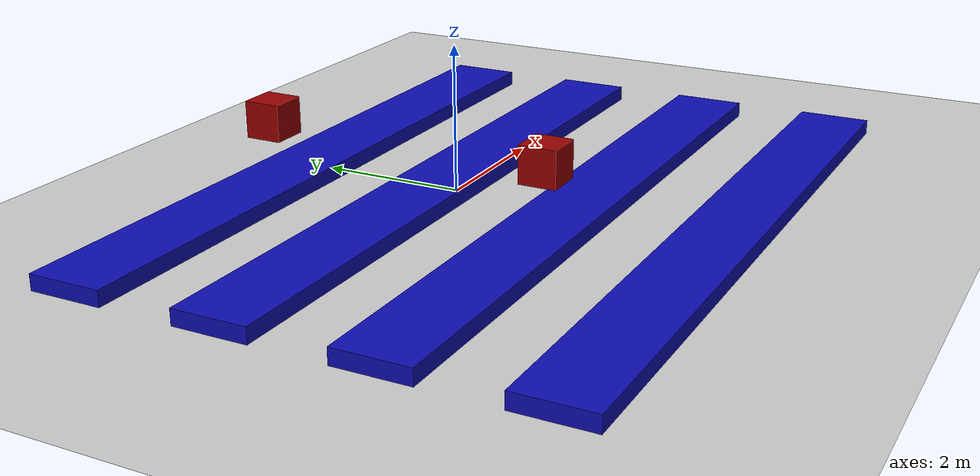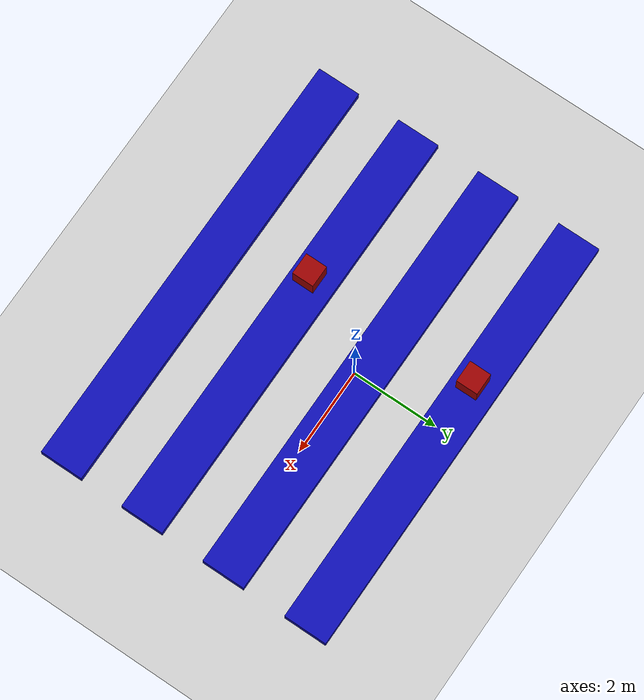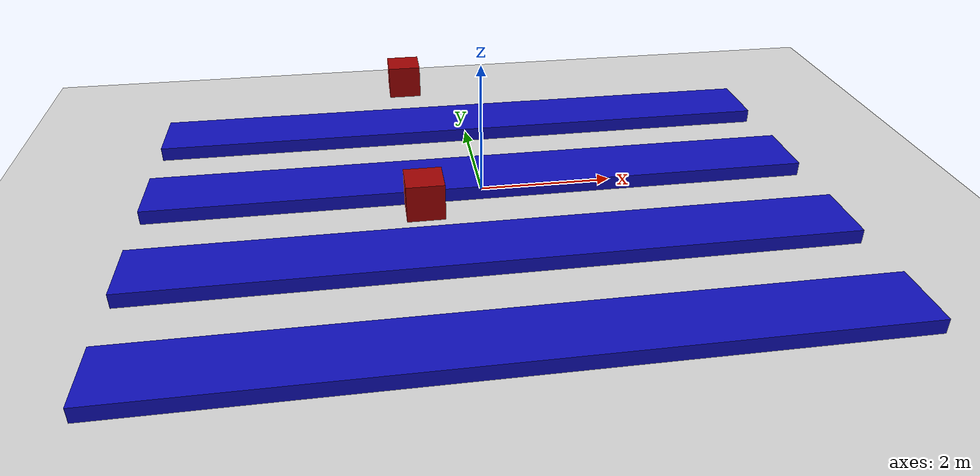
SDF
<sdf version="1.8">
 <world name="warehosue">
  <physics name="1ms" type="ignored">
   <max_step_size>0.001</max_step_size>
   <real_time_factor>1.0</real_time_factor>
  </physics>
  <plugin filename="gz-sim-physics-system" name="gz::sim::systems::Physics"/>
  <plugin filename="gz-sim-sensors-system" name="gz::sim::systems::Sensors">
   <render_engine>ogre2</render_engine>
  </plugin>
  <plugin filename="gz-sim-scene-broadcaster-system" name="gz::sim::systems::SceneBroadcaster"/>
  <plugin filename="gz-sim-user-commands-system" name="gz::sim::systems::UserCommands"/>
  <light name="sun" type="directional">
   <pose>0 0 10 0 0 0</pose>
   <diffuse>0.8 0.8 0.8 1</diffuse>
   <specular>0.2 0.2 0.2 1</specular>
   <attenuation>
    <range>1000</range>
    <constant>0.9</constant>
    <linear>0.01</linear>
    <quadratic>0.001</quadratic>
   </attenuation>
   <direction>-0.5 0.1 -0.9</direction>
  </light>
  <model name="ground_plane">
   <static>true</static>
   <link name="link">
    <collision name="collision">
     <geometry><plane><normal>0 0 1</normal><size>100 100</size></plane></geometry>
    </collision>
    <visual name="visual">
     <geometry><plane><normal>0 0 1</normal><size>100 100</size></plane></geometry>
     <material>
      <ambient>0.8 0.8 0.8 1</ambient>
      <diffuse>0.8 0.8 0.8 1</diffuse>
      <specular>0.8 0.8 0.8 1</specular>
     </material>
    </visual>
   </link>
  </model>
  <joint name="platform_to_manipulator" type="fixed">
   <parent>diff_drive_1::chassis</parent>
   <child>abb_irb4600_60_205_1::base_link</child>
  </joint>
  <model name="conveyor_1">
   <pose>0 2.20 0 0 0 0</pose>
   <static>1</static>
   <scale>4 4 4</scale>
   <link name="base_link">
    <pose relative_to="__model__">0 0 0 0 0 0</pose>
    <inertial>
     <mass>6.06</mass>
     <inertia>
      <ixx>0.002731</ixx>
      <ixy>0</ixy>
      <ixz>0</ixz>
      <iyy>0.032554</iyy>
      <iyz>1.5e-05</iyz>
      <izz>0.031391</izz>
     </inertia>
    </inertial>
    <collision name="main_collision">
     <pose relative_to="base_link">0 0 0 0 0 0</pose>
     <geometry><box><size>10 1 0.4</size></box></geometry>
     <surface><friction><ode><mu>0.7</mu><mu2>150</mu2><fdir1>0 1 0</fdir1></ode></friction></surface>
    </collision>
    <collision name="collision_1">
     <pose relative_to="base_link">2.5 0 0 -1.570796327 0 0</pose>
     <geometry><cylinder><length>0.2</length><radius>0.05</radius></cylinder></geometry>
     <surface><friction><ode><mu>0.7</mu><mu2>150</mu2><fdir1>0 1 0</fdir1></ode></friction></surface>
    </collision>
    <collision name="collision_2">
     <pose relative_to="base_link">-2.5 0 0 -1.570796327 0 0</pose>
     <geometry><cylinder><length>0.2</length><radius>0.05</radius></cylinder></geometry>
     <surface><friction><ode><mu>0.7</mu><mu2>150</mu2><fdir1>0 1 0</fdir1></ode></friction></surface>
    </collision>
    <visual name="main_visual">
     <pose relative_to="base_link">0 0 0 0 0 0</pose>
     <geometry><box><size>10 1 0.4</size></box></geometry>
     <material>
      <ambient>0.05 0.05 0.70 1</ambient>
      <diffuse>0.05 0.05 0.70 1</diffuse>
      <specular>0.8 0.8 0.8 1</specular>
     </material>
    </visual>
    <visual name="visual_1">
     <pose relative_to="base_link">2.5 0 0 -1.570796327 0 0</pose>
     <geometry><cylinder><length>0.2</length><radius>0.05</radius></cylinder></geometry>
     <material>
      <ambient>0.05 0.05 0.70 1</ambient>
      <diffuse>0.05 0.05 0.70 1</diffuse>
      <specular>0.8 0.8 0.8 1</specular>
     </material>
    </visual>
    <visual name="visual_2">
     <pose relative_to="base_link">-2.5 0 0 -1.570796327 0 0</pose>
     <geometry><cylinder><length>0.2</length><radius>0.05</radius></cylinder></geometry>
     <material>
      <ambient>0.05 0.05 0.70 1</ambient>
      <diffuse>0.05 0.05 0.70 1</diffuse>
      <specular>0.8 0.8 0.8 1</specular>
     </material>
    </visual>
   </link>
   <plugin filename="gz-sim-track-controller-system" name="gz::sim::systems::TrackController">
    <link>base_link</link>
    <odometry_publish_frequency>1</odometry_publish_frequency>
   </plugin>
   <plugin filename="gz-sim-triggered-publisher-system" name="gz::sim::systems::TriggeredPublisher">
    <input type="gz.msgs.Int32" topic="/keyboard/keypress"><match field="data">87</match></input>
    <output type="gz.msgs.Double" topic="/model/conveyor_1/link/base_link/track_cmd_vel">data: 1.0</output>
   </plugin>
   <plugin filename="gz-sim-triggered-publisher-system" name="gz::sim::systems::TriggeredPublisher">
    <input type="gz.msgs.Int32" topic="/keyboard/keypress"><match field="data">88</match></input>
    <output type="gz.msgs.Double" topic="/model/conveyor_1/link/base_link/track_cmd_vel">data: -1.0</output>
   </plugin>
   <plugin filename="gz-sim-triggered-publisher-system" name="gz::sim::systems::TriggeredPublisher">
    <input type="gz.msgs.Int32" topic="/keyboard/keypress"><match field="data">83</match></input>
    <output type="gz.msgs.Double" topic="/model/conveyor_1/link/base_link/track_cmd_vel">data: 0.0</output>
   </plugin>
  </model>
  <model name="conveyor_2">
   <pose>0 0.20 0 0 0 0</pose>
   <static>1</static>
   <scale>4 4 4</scale>
   <link name="base_link">
    <pose relative_to="__model__">0 0 0 0 0 0</pose>
    <inertial>
     <mass>6.06</mass>
     <inertia>
      <ixx>0.002731</ixx>
      <ixy>0</ixy>
      <ixz>0</ixz>
      <iyy>0.032554</iyy>
      <iyz>1.5e-05</iyz>
      <izz>0.031391</izz>
     </inertia>
    </inertial>
    <collision name="main_collision">
     <pose relative_to="base_link">0 0 0 0 0 0</pose>
     <geometry><box><size>10 1 0.4</size></box></geometry>
     <surface><friction><ode><mu>0.7</mu><mu2>150</mu2><fdir1>0 1 0</fdir1></ode></friction></surface>
    </collision>
    <collision name="collision_1">
     <pose relative_to="base_link">2.5 0 0 -1.570796327 0 0</pose>
     <geometry><cylinder><length>0.2</length><radius>0.05</radius></cylinder></geometry>
     <surface><friction><ode><mu>0.7</mu><mu2>150</mu2><fdir1>0 1 0</fdir1></ode></friction></surface>
    </collision>
    <collision name="collision_2">
     <pose relative_to="base_link">-2.5 0 0 -1.570796327 0 0</pose>
     <geometry><cylinder><length>0.2</length><radius>0.05</radius></cylinder></geometry>
     <surface><friction><ode><mu>0.7</mu><mu2>150</mu2><fdir1>0 1 0</fdir1></ode></friction></surface>
    </collision>
    <visual name="main_visual">
     <pose relative_to="base_link">0 0 0 0 0 0</pose>
     <geometry><box><size>10 1 0.4</size></box></geometry>
     <material>
      <ambient>0.05 0.05 0.70 1</ambient>
      <diffuse>0.05 0.05 0.70 1</diffuse>
      <specular>0.8 0.8 0.8 1</specular>
     </material>
    </visual>
    <visual name="visual_1">
     <pose relative_to="base_link">2.5 0 0 -1.570796327 0 0</pose>
     <geometry><cylinder><length>0.2</length><radius>0.05</radius></cylinder></geometry>
     <material>
      <ambient>0.05 0.05 0.70 1</ambient>
      <diffuse>0.05 0.05 0.70 1</diffuse>
      <specular>0.8 0.8 0.8 1</specular>
     </material>
    </visual>
    <visual name="visual_2">
     <pose relative_to="base_link">-2.5 0 0 -1.570796327 0 0</pose>
     <geometry><cylinder><length>0.2</length><radius>0.05</radius></cylinder></geometry>
     <material>
      <ambient>0.05 0.05 0.70 1</ambient>
      <diffuse>0.05 0.05 0.70 1</diffuse>
      <specular>0.8 0.8 0.8 1</specular>
     </material>
    </visual>
   </link>
   <plugin filename="gz-sim-track-controller-system" name="gz::sim::systems::TrackController">
    <link>base_link</link>
    <odometry_publish_frequency>1</odometry_publish_frequency>
   </plugin>
   <plugin filename="gz-sim-triggered-publisher-system" name="gz::sim::systems::TriggeredPublisher">
    <input type="gz.msgs.Int32" topic="/keyboard/keypress"><match field="data">87</match></input>
    <output type="gz.msgs.Double" topic="/model/conveyor_2/link/base_link/track_cmd_vel">data: 1.0</output>
   </plugin>
   <plugin filename="gz-sim-triggered-publisher-system" name="gz::sim::systems::TriggeredPublisher">
    <input type="gz.msgs.Int32" topic="/keyboard/keypress"><match field="data">88</match></input>
    <output type="gz.msgs.Double" topic="/model/conveyor_2/link/base_link/track_cmd_vel">data: -1.0</output>
   </plugin>
   <plugin filename="gz-sim-triggered-publisher-system" name="gz::sim::systems::TriggeredPublisher">
    <input type="gz.msgs.Int32" topic="/keyboard/keypress"><match field="data">83</match></input>
    <output type="gz.msgs.Double" topic="/model/conveyor_2/link/base_link/track_cmd_vel">data: 0.0</output>
   </plugin>
  </model>
  <model name="conveyor_3">
   <pose>0 -1.80 0 0 0 0</pose>
   <static>1</static>
   <scale>4 4 4</scale>
   <link name="base_link">
    <pose relative_to="__model__">0 0 0 0 0 0</pose>
    <inertial>
     <mass>6.06</mass>
     <inertia>
      <ixx>0.002731</ixx>
      <ixy>0</ixy>
      <ixz>0</ixz>
      <iyy>0.032554</iyy>
      <iyz>1.5e-05</iyz>
      <izz>0.031391</izz>
     </inertia>
    </inertial>
    <collision name="main_collision">
     <pose relative_to="base_link">0 0 0 0 0 0</pose>
     <geometry><box><size>10 1 0.4</size></box></geometry>
     <surface><friction><ode><mu>0.7</mu><mu2>150</mu2><fdir1>0 1 0</fdir1></ode></friction></surface>
    </collision>
    <collision name="collision_1">
     <pose relative_to="base_link">2.5 0 0 -1.570796327 0 0</pose>
     <geometry><cylinder><length>0.2</length><radius>0.05</radius></cylinder></geometry>
     <surface><friction><ode><mu>0.7</mu><mu2>150</mu2><fdir1>0 1 0</fdir1></ode></friction></surface>
    </collision>
    <collision name="collision_2">
     <pose relative_to="base_link">-2.5 0 0 -1.570796327 0 0</pose>
     <geometry><cylinder><length>0.2</length><radius>0.05</radius></cylinder></geometry>
     <surface><friction><ode><mu>0.7</mu><mu2>150</mu2><fdir1>0 1 0</fdir1></ode></friction></surface>
    </collision>
    <visual name="main_visual">
     <pose relative_to="base_link">0 0 0 0 0 0</pose>
     <geometry><box><size>10 1 0.4</size></box></geometry>
     <material>
      <ambient>0.05 0.05 0.70 1</ambient>
      <diffuse>0.05 0.05 0.70 1</diffuse>
      <specular>0.8 0.8 0.8 1</specular>
     </material>
    </visual>
    <visual name="visual_1">
     <pose relative_to="base_link">2.5 0 0 -1.570796327 0 0</pose>
     <geometry><cylinder><length>0.2</length><radius>0.05</radius></cylinder></geometry>
     <material>
      <ambient>0.05 0.05 0.70 1</ambient>
      <diffuse>0.05 0.05 0.70 1</diffuse>
      <specular>0.8 0.8 0.8 1</specular>
     </material>
    </visual>
    <visual name="visual_2">
     <pose relative_to="base_link">-2.5 0 0 -1.570796327 0 0</pose>
     <geometry><cylinder><length>0.2</length><radius>0.05</radius></cylinder></geometry>
     <material>
      <ambient>0.05 0.05 0.70 1</ambient>
      <diffuse>0.05 0.05 0.70 1</diffuse>
      <specular>0.8 0.8 0.8 1</specular>
     </material>
    </visual>
   </link>
   <plugin filename="gz-sim-track-controller-system" name="gz::sim::systems::TrackController">
    <link>base_link</link>
    <odometry_publish_frequency>1</odometry_publish_frequency>
   </plugin>
   <plugin filename="gz-sim-triggered-publisher-system" name="gz::sim::systems::TriggeredPublisher">
    <input type="gz.msgs.Int32" topic="/keyboard/keypress"><match field="data">75</match></input>
    <output type="gz.msgs.Double" topic="/model/conveyor_3/link/base_link/track_cmd_vel">data: 1.0</output>
   </plugin>
   <plugin filename="gz-sim-triggered-publisher-system" name="gz::sim::systems::TriggeredPublisher">
    <input type="gz.msgs.Int32" topic="/keyboard/keypress"><match field="data">88</match></input>
    <output type="gz.msgs.Double" topic="/model/conveyor_3/link/base_link/track_cmd_vel">data: -1.0</output>
   </plugin>
   <plugin filename="gz-sim-triggered-publisher-system" name="gz::sim::systems::TriggeredPublisher">
    <input type="gz.msgs.Int32" topic="/keyboard/keypress"><match field="data">83</match></input>
    <output type="gz.msgs.Double" topic="/model/conveyor_3/link/base_link/track_cmd_vel">data: 0.0</output>
   </plugin>
  </model>
  <model name="conveyor_4">
   <pose>0 -3.80 0 0 0 0</pose>
   <static>1</static>
   <scale>4 4 4</scale>
   <link name="base_link">
    <pose relative_to="__model__">0 0 0 0 0 0</pose>
    <inertial>
     <mass>6.06</mass>
     <inertia>
      <ixx>0.002731</ixx>
      <ixy>0</ixy>
      <ixz>0</ixz>
      <iyy>0.032554</iyy>
      <iyz>1.5e-05</iyz>
      <izz>0.031391</izz>
     </inertia>
    </inertial>
    <collision name="main_collision">
     <pose relative_to="base_link">0 0 0 0 0 0</pose>
     <geometry><box><size>10 1 0.4</size></box></geometry>
     <surface><friction><ode><mu>0.7</mu><mu2>150</mu2><fdir1>0 1 0</fdir1></ode></friction></surface>
    </collision>
    <collision name="collision_1">
     <pose relative_to="base_link">2.5 0 0 -1.570796327 0 0</pose>
     <geometry><cylinder><length>0.2</length><radius>0.05</radius></cylinder></geometry>
     <surface><friction><ode><mu>0.7</mu><mu2>150</mu2><fdir1>0 1 0</fdir1></ode></friction></surface>
    </collision>
    <collision name="collision_2">
     <pose relative_to="base_link">-2.5 0 0 -1.570796327 0 0</pose>
     <geometry><cylinder><length>0.2</length><radius>0.05</radius></cylinder></geometry>
     <surface><friction><ode><mu>0.7</mu><mu2>150</mu2><fdir1>0 1 0</fdir1></ode></friction></surface>
    </collision>
    <visual name="main_visual">
     <pose relative_to="base_link">0 0 0 0 0 0</pose>
     <geometry><box><size>10 1 0.4</size></box></geometry>
     <material>
      <ambient>0.05 0.05 0.70 1</ambient>
      <diffuse>0.05 0.05 0.70 1</diffuse>
      <specular>0.8 0.8 0.8 1</specular>
     </material>
    </visual>
    <visual name="visual_1">
     <pose relative_to="base_link">2.5 0 0 -1.570796327 0 0</pose>
     <geometry><cylinder><length>0.2</length><radius>0.05</radius></cylinder></geometry>
     <material>
      <ambient>0.05 0.05 0.70 1</ambient>
      <diffuse>0.05 0.05 0.70 1</diffuse>
      <specular>0.8 0.8 0.8 1</specular>
     </material>
    </visual>
    <visual name="visual_2">
     <pose relative_to="base_link">-2.5 0 0 -1.570796327 0 0</pose>
     <geometry><cylinder><length>0.2</length><radius>0.05</radius></cylinder></geometry>
     <material>
      <ambient>0.05 0.05 0.70 1</ambient>
      <diffuse>0.05 0.05 0.70 1</diffuse>
      <specular>0.8 0.8 0.8 1</specular>
     </material>
    </visual>
   </link>
   <plugin filename="gz-sim-track-controller-system" name="gz::sim::systems::TrackController">
    <link>base_link</link>
    <odometry_publish_frequency>1</odometry_publish_frequency>
   </plugin>
   <plugin filename="gz-sim-triggered-publisher-system" name="gz::sim::systems::TriggeredPublisher">
    <input type="gz.msgs.Int32" topic="/keyboard/keypress"><match field="data">87</match></input>
    <output type="gz.msgs.Double" topic="/model/conveyor_4/link/base_link/track_cmd_vel">data: 1.0</output>
   </plugin>
   <plugin filename="gz-sim-triggered-publisher-system" name="gz::sim::systems::TriggeredPublisher">
    <input type="gz.msgs.Int32" topic="/keyboard/keypress"><match field="data">88</match></input>
    <output type="gz.msgs.Double" topic="/model/conveyor_4/link/base_link/track_cmd_vel">data: -1.0</output>
   </plugin>
   <plugin filename="gz-sim-triggered-publisher-system" name="gz::sim::systems::TriggeredPublisher">
    <input type="gz.msgs.Int32" topic="/keyboard/keypress"><match field="data">83</match></input>
    <output type="gz.msgs.Double" topic="/model/conveyor_4/link/base_link/track_cmd_vel">data: 0.0</output>
   </plugin>
  </model>
  <model name="box_1">
   <pose>-1 2.20 1 0 0 0</pose>
   <link name="base_link">
    <inertial>
     <mass>1.06</mass>
     <inertia><ixx>0.01</ixx><ixy>0</ixy><ixz>0</ixz><iyy>0.01</iyy><iyz>0</iyz><izz>0.01</izz></inertia>
    </inertial>
    <visual name="main_visual">
     <pose relative_to="base_link">0 0 0 0 0 0</pose>
     <geometry><box><size>0.5 0.5 0.5</size></box></geometry>
     <material>
      <ambient>0.60 0.0 0.0 1</ambient>
      <diffuse>0.60 0.0 0.0 1</diffuse>
      <specular>0.8 0.8 0.8 1</specular>
     </material>
    </visual>
    <collision name="main_collision">
     <geometry><box><size>0.5 0.5 0.5</size></box></geometry>
     <pose relative_to="base_link">0 0 0 0 0 0</pose>
    </collision>
   </link>
   <plugin filename="gz-sim-detachable-joint-system" name="gz::sim::systems::DetachableJoint">
    <parent_link>base_link</parent_link>
    <child_model>abb_irb4600_60_205_1</child_model>
    <child_link>link_6</child_link>
    <detach_topic>/box_1/place</detach_topic>
    <attach_topic>/box_1/pick</attach_topic>
    <output_topic>/box_1/state</output_topic>
   </plugin>
  </model>
  <model name="box_2">
   <pose>-1 -1.80 1 0 0 0</pose>
   <link name="base_link">
    <inertial>
     <mass>1.06</mass>
     <inertia><ixx>0.01</ixx><ixy>0</ixy><ixz>0</ixz><iyy>0.01</iyy><iyz>0</iyz><izz>0.01</izz></inertia>
    </inertial>
    <visual name="main_visual">
     <pose relative_to="base_link">0 0 0 0 0 0</pose>
     <geometry><box><size>0.5 0.5 0.5</size></box></geometry>
     <material>
      <ambient>0.60 0.0 0.0 1</ambient>
      <diffuse>0.60 0.0 0.0 1</diffuse>
      <specular>0.8 0.8 0.8 1</specular>
     </material>
    </visual>
    <collision name="main_collision">
     <geometry><box><size>0.5 0.5 0.5</size></box></geometry>
     <pose relative_to="base_link">0 0 0 0 0 0</pose>
    </collision>
   </link>
   <plugin filename="gz-sim-detachable-joint-system" name="gz::sim::systems::DetachableJoint">
    <parent_link>base_link</parent_link>
    <child_model>abb_irb4600_60_205_1</child_model>
    <child_link>link_6</child_link>
    <detach_topic>/box_2/place</detach_topic>
    <attach_topic>/box_2/pick</attach_topic>
    <output_topic>/box_2/state</output_topic>
   </plugin>
  </model>
 </world>
</sdf>
